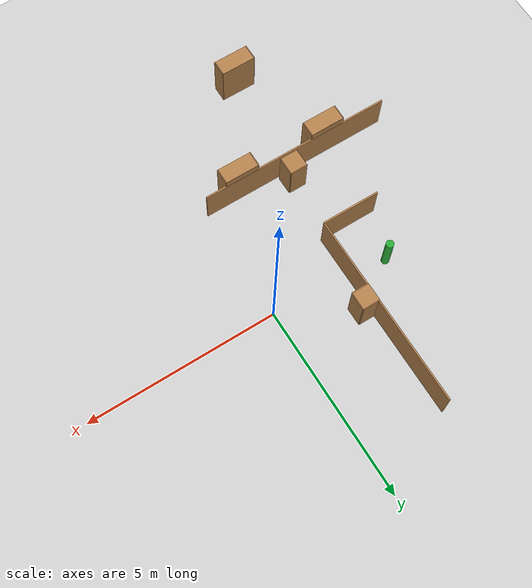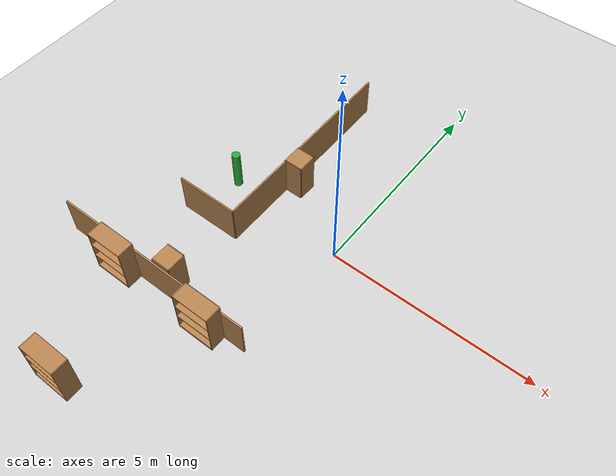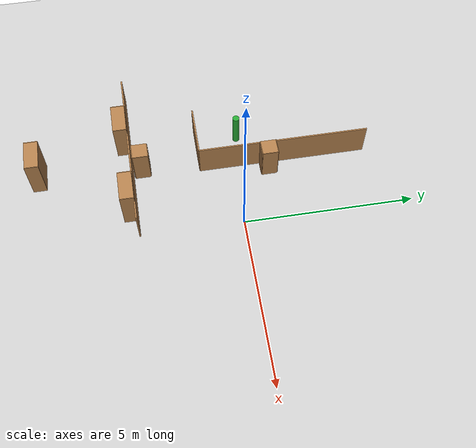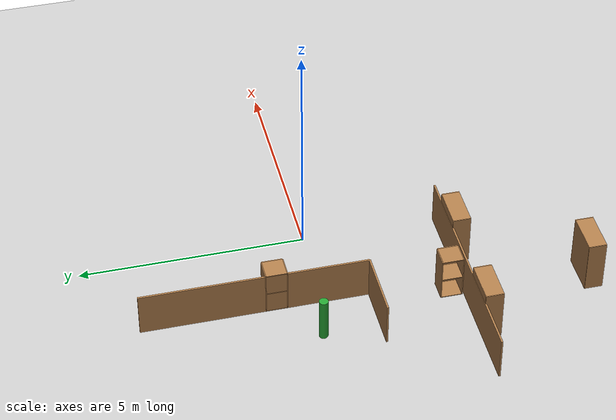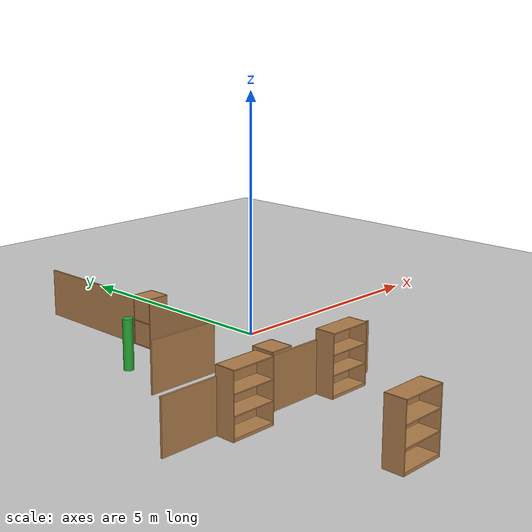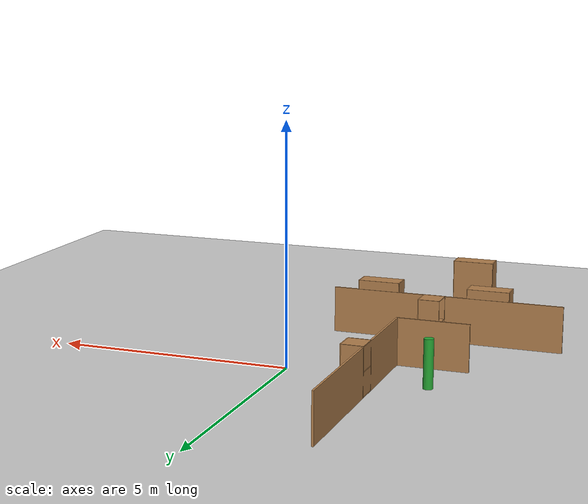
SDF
<sdf version="1.4">
 <world name="default">
  <model name="ground_plane">
   <static>1</static>
   <link name="link">
    <collision name="collision">
     <geometry><plane><normal>0 0 1</normal><size>50 50</size></plane></geometry>
     <surface><friction><ode><mu>100</mu><mu2>50</mu2></ode></friction></surface>
    </collision>
    <visual name="visual">
     <cast_shadows>0</cast_shadows>
     <geometry><plane><normal>0 0 1</normal><size>100 100</size></plane></geometry>
     <material>
      <script><uri>file://media/materials/scripts/gazebo.material</uri><name>Gazebo/Grey</name></script>
     </material>
    </visual>
    <velocity_decay><linear>0</linear><angular>0</angular></velocity_decay>
   </link>
  </model>
  <model name="target_cylinder_D">
   <pose>-3 0.25 0.5 0 -0 0</pose>
   <link name="link">
    <inertial>
     <mass>1</mass>
     <inertia><ixx>1</ixx><ixy>0</ixy><ixz>0</ixz><iyy>1</iyy><iyz>0</iyz><izz>1</izz></inertia>
    </inertial>
    <collision name="collision">
     <geometry><cylinder><radius>0.1</radius><length>1</length></cylinder></geometry>
    </collision>
    <visual name="visual">
     <geometry><cylinder><radius>0.1</radius><length>1</length></cylinder></geometry>
     <material>
      <script><uri>file://media/materials/scripts/gazebo.material</uri><name>Gazebo/Green</name></script>
     </material>
    </visual>
    <velocity_decay><linear>0</linear><angular>0</angular></velocity_decay>
   </link>
   <static>1</static>
  </model>
  <model name="high_wall_1">
   <pose>-2.5 -3 0.5 0 -0 0</pose>
   <link name="link">
    <inertial>
     <mass>1</mass>
     <inertia><ixx>1</ixx><ixy>0</ixy><ixz>0</ixz><iyy>1</iyy><iyz>0</iyz><izz>1</izz></inertia>
    </inertial>
    <collision name="collision"><geometry><box><size>5 0.04 1</size></box></geometry></collision>
    <visual name="visual">
     <geometry><box><size>5 0.04 1</size></box></geometry>
     <material>
      <script><uri>file://media/materials/scripts/gazebo.material</uri><name>Gazebo/Wood</name></script>
     </material>
    </visual>
    <velocity_decay><linear>0</linear><angular>0</angular></velocity_decay>
   </link>
   <static>1</static>
  </model>
  <model name="high_wall_3">
   <pose>-2 1.5 0.5 0 -0 1.571</pose>
   <link name="link">
    <inertial>
     <mass>1</mass>
     <inertia><ixx>1</ixx><ixy>0</ixy><ixz>0</ixz><iyy>1</iyy><iyz>0</iyz><izz>1</izz></inertia>
    </inertial>
    <collision name="collision"><geometry><box><size>5 0.04 1</size></box></geometry></collision>
    <visual name="visual">
     <geometry><box><size>5 0.04 1</size></box></geometry>
     <material>
      <script><uri>file://media/materials/scripts/gazebo.material</uri><name>Gazebo/Wood</name></script>
     </material>
    </visual>
    <velocity_decay><linear>0</linear><angular>0</angular></velocity_decay>
   </link>
   <static>1</static>
  </model>
  <model name="high_wall_5">
   <pose>-2.75 -1 0.5 0 -0 0</pose>
   <link name="link">
    <inertial>
     <mass>1</mass>
     <inertia><ixx>1</ixx><ixy>0</ixy><ixz>0</ixz><iyy>1</iyy><iyz>0</iyz><izz>1</izz></inertia>
    </inertial>
    <collision name="collision"><geometry><box><size>1.5 0.04 1</size></box></geometry></collision>
    <visual name="visual">
     <geometry><box><size>1.5 0.04 1</size></box></geometry>
     <material>
      <script><uri>file://media/materials/scripts/gazebo.material</uri><name>Gazebo/Wood</name></script>
     </material>
    </visual>
    <velocity_decay><linear>0</linear><angular>0</angular></velocity_decay>
   </link>
   <static>1</static>
  </model>
  <model name="bookshelf">
   <static>1</static>
   <link name="link">
    <inertial><mass>1</mass></inertial>
    <collision name="back">
     <pose>0 0.005 0.6 0 -0 0</pose>
     <geometry><box><size>0.9 0.01 1.2</size></box></geometry>
    </collision>
    <visual name="visual1">
     <pose>0 0.005 0.6 0 -0 0</pose>
     <geometry><box><size>0.9 0.01 1.2</size></box></geometry>
     <material>
      <script><uri>file://media/materials/scripts/gazebo.material</uri><name>Gazebo/Wood</name></script>
     </material>
    </visual>
    <collision name="left_side">
     <pose>0.45 -0.195 0.6 0 -0 0</pose>
     <geometry><box><size>0.02 0.4 1.2</size></box></geometry>
    </collision>
    <visual name="visual2">
     <pose>0.45 -0.195 0.6 0 -0 0</pose>
     <geometry><box><size>0.02 0.4 1.2</size></box></geometry>
     <material>
      <script><uri>file://media/materials/scripts/gazebo.material</uri><name>Gazebo/Wood</name></script>
     </material>
    </visual>
    <collision name="right_side">
     <pose>-0.45 -0.195 0.6 0 -0 0</pose>
     <geometry><box><size>0.02 0.4 1.2</size></box></geometry>
    </collision>
    <visual name="visual3">
     <pose>-0.45 -0.195 0.6 0 -0 0</pose>
     <geometry><box><size>0.02 0.4 1.2</size></box></geometry>
     <material>
      <script><uri>file://media/materials/scripts/gazebo.material</uri><name>Gazebo/Wood</name></script>
     </material>
    </visual>
    <collision name="bottom">
     <pose>0 -0.195 0.03 0 -0 0</pose>
     <geometry><box><size>0.88 0.4 0.06</size></box></geometry>
    </collision>
    <visual name="visual4">
     <pose>0 -0.195 0.03 0 -0 0</pose>
     <geometry><box><size>0.88 0.4 0.06</size></box></geometry>
     <material>
      <script><uri>file://media/materials/scripts/gazebo.material</uri><name>Gazebo/Wood</name></script>
     </material>
    </visual>
    <collision name="top">
     <pose>0 -0.195 1.19 0 -0 0</pose>
     <geometry><box><size>0.88 0.4 0.02</size></box></geometry>
    </collision>
    <visual name="visual5">
     <pose>0 -0.195 1.19 0 -0 0</pose>
     <geometry><box><size>0.88 0.4 0.02</size></box></geometry>
     <material>
      <script><uri>file://media/materials/scripts/gazebo.material</uri><name>Gazebo/Wood</name></script>
     </material>
    </visual>
    <collision name="low_shelf">
     <pose>0 -0.195 0.43 0 -0 0</pose>
     <geometry><box><size>0.88 0.4 0.02</size></box></geometry>
    </collision>
    <visual name="visual6">
     <pose>0 -0.195 0.43 0 -0 0</pose>
     <geometry><box><size>0.88 0.4 0.02</size></box></geometry>
     <material>
      <script><uri>file://media/materials/scripts/gazebo.material</uri><name>Gazebo/Wood</name></script>
     </material>
    </visual>
    <collision name="high_shelf">
     <pose>0 -0.195 0.8 0 -0 0</pose>
     <geometry><box><size>0.88 0.4 0.02</size></box></geometry>
    </collision>
    <visual name="visual7">
     <pose>0 -0.195 0.8 0 -0 0</pose>
     <geometry><box><size>0.88 0.4 0.02</size></box></geometry>
     <material>
      <script><uri>file://media/materials/scripts/gazebo.material</uri><name>Gazebo/Wood</name></script>
     </material>
    </visual>
    <velocity_decay><linear>0</linear><angular>0</angular></velocity_decay>
   </link>
   <pose>-3.40176 -3 0 0 -0 0</pose>
  </model>
  <model name="bookshelf_0">
   <static>1</static>
   <link name="link">
    <inertial><mass>1</mass></inertial>
    <collision name="back">
     <pose>0 0.005 0.6 0 -0 0</pose>
     <geometry><box><size>0.9 0.01 1.2</size></box></geometry>
    </collision>
    <visual name="visual1">
     <pose>0 0.005 0.6 0 -0 0</pose>
     <geometry><box><size>0.9 0.01 1.2</size></box></geometry>
     <material>
      <script><uri>file://media/materials/scripts/gazebo.material</uri><name>Gazebo/Wood</name></script>
     </material>
    </visual>
    <collision name="left_side">
     <pose>0.45 -0.195 0.6 0 -0 0</pose>
     <geometry><box><size>0.02 0.4 1.2</size></box></geometry>
    </collision>
    <visual name="visual2">
     <pose>0.45 -0.195 0.6 0 -0 0</pose>
     <geometry><box><size>0.02 0.4 1.2</size></box></geometry>
     <material>
      <script><uri>file://media/materials/scripts/gazebo.material</uri><name>Gazebo/Wood</name></script>
     </material>
    </visual>
    <collision name="right_side">
     <pose>-0.45 -0.195 0.6 0 -0 0</pose>
     <geometry><box><size>0.02 0.4 1.2</size></box></geometry>
    </collision>
    <visual name="visual3">
     <pose>-0.45 -0.195 0.6 0 -0 0</pose>
     <geometry><box><size>0.02 0.4 1.2</size></box></geometry>
     <material>
      <script><uri>file://media/materials/scripts/gazebo.material</uri><name>Gazebo/Wood</name></script>
     </material>
    </visual>
    <collision name="bottom">
     <pose>0 -0.195 0.03 0 -0 0</pose>
     <geometry><box><size>0.88 0.4 0.06</size></box></geometry>
    </collision>
    <visual name="visual4">
     <pose>0 -0.195 0.03 0 -0 0</pose>
     <geometry><box><size>0.88 0.4 0.06</size></box></geometry>
     <material>
      <script><uri>file://media/materials/scripts/gazebo.material</uri><name>Gazebo/Wood</name></script>
     </material>
    </visual>
    <collision name="top">
     <pose>0 -0.195 1.19 0 -0 0</pose>
     <geometry><box><size>0.88 0.4 0.02</size></box></geometry>
    </collision>
    <visual name="visual5">
     <pose>0 -0.195 1.19 0 -0 0</pose>
     <geometry><box><size>0.88 0.4 0.02</size></box></geometry>
     <material>
      <script><uri>file://media/materials/scripts/gazebo.material</uri><name>Gazebo/Wood</name></script>
     </material>
    </visual>
    <collision name="low_shelf">
     <pose>0 -0.195 0.43 0 -0 0</pose>
     <geometry><box><size>0.88 0.4 0.02</size></box></geometry>
    </collision>
    <visual name="visual6">
     <pose>0 -0.195 0.43 0 -0 0</pose>
     <geometry><box><size>0.88 0.4 0.02</size></box></geometry>
     <material>
      <script><uri>file://media/materials/scripts/gazebo.material</uri><name>Gazebo/Wood</name></script>
     </material>
    </visual>
    <collision name="high_shelf">
     <pose>0 -0.195 0.8 0 -0 0</pose>
     <geometry><box><size>0.88 0.4 0.02</size></box></geometry>
    </collision>
    <visual name="visual7">
     <pose>0 -0.195 0.8 0 -0 0</pose>
     <geometry><box><size>0.88 0.4 0.02</size></box></geometry>
     <material>
      <script><uri>file://media/materials/scripts/gazebo.material</uri><name>Gazebo/Wood</name></script>
     </material>
    </visual>
    <velocity_decay><linear>0</linear><angular>0</angular></velocity_decay>
   </link>
   <pose>-1 -3 0 0 -0 0</pose>
  </model>
  <model name="cabinet_0">
   <static>1</static>
   <link name="cabinet_bottom_plate">
    <inertial>
     <pose>0 0 -1 0 -0 0</pose>
     <inertia><ixx>2.05</ixx><ixy>0</ixy><ixz>0</ixz><iyy>2.05</iyy><iyz>0</iyz><izz>2.05</izz></inertia>
     <mass>25</mass>
    </inertial>
    <collision name="cabinet_bottom_plate_geom">
     <pose>0 0 0.01 0 -0 0</pose>
     <geometry><box><size>0.45 0.45 0.02</size></box></geometry>
    </collision>
    <visual name="cabinet_bottom_plate_geom_visual">
     <pose>0 0 0.01 0 -0 0</pose>
     <geometry><box><size>0.45 0.45 0.02</size></box></geometry>
     <material>
      <script><uri>file://media/materials/scripts/gazebo.material</uri><name>Gazebo/Wood</name></script>
     </material>
    </visual>
    <collision name="cabinet_bottom_plate_geom_cabinet_back_plate">
     <pose>0.235 0 0.51 0 -0 0</pose>
     <geometry><box><size>0.02 0.45 1.02</size></box></geometry>
    </collision>
    <visual name="cabinet_bottom_plate_geom_cabinet_back_plate_visual">
     <pose>0.235 0 0.51 0 -0 0</pose>
     <geometry><box><size>0.02 0.45 1.02</size></box></geometry>
     <material>
      <script><uri>file://media/materials/scripts/gazebo.material</uri><name>Gazebo/Wood</name></script>
     </material>
    </visual>
    <collision name="cabinet_bottom_plate_geom_cabinet_left_plate">
     <pose>0 0.235 0.51 0 -0 0</pose>
     <geometry><box><size>0.45 0.02 1.02</size></box></geometry>
    </collision>
    <visual name="cabinet_bottom_plate_geom_cabinet_left_plate_visual">
     <pose>0 0.235 0.51 0 -0 0</pose>
     <geometry><box><size>0.45 0.02 1.02</size></box></geometry>
     <material>
      <script><uri>file://media/materials/scripts/gazebo.material</uri><name>Gazebo/Wood</name></script>
     </material>
    </visual>
    <collision name="cabinet_bottom_plate_geom_cabinet_middle_plate">
     <pose>0 0 0.51 0 -0 0</pose>
     <geometry><box><size>0.45 0.45 0.02</size></box></geometry>
    </collision>
    <visual name="cabinet_bottom_plate_geom_cabinet_middle_plate_visual">
     <pose>0 0 0.51 0 -0 0</pose>
     <geometry><box><size>0.45 0.45 0.02</size></box></geometry>
     <material>
      <script><uri>file://media/materials/scripts/gazebo.material</uri><name>Gazebo/Wood</name></script>
     </material>
    </visual>
    <collision name="cabinet_bottom_plate_geom_cabinet_right_plate">
     <pose>0 -0.235 0.51 0 -0 0</pose>
     <geometry><box><size>0.45 0.02 1.02</size></box></geometry>
    </collision>
    <visual name="cabinet_bottom_plate_geom_cabinet_right_plate_visual">
     <pose>0 -0.235 0.51 0 -0 0</pose>
     <geometry><box><size>0.45 0.02 1.02</size></box></geometry>
     <material>
      <script><uri>file://media/materials/scripts/gazebo.material</uri><name>Gazebo/Wood</name></script>
     </material>
    </visual>
    <collision name="cabinet_bottom_plate_geom_cabinet_top_plate">
     <pose>0 0 1.01 0 -0 0</pose>
     <geometry><box><size>0.45 0.45 0.02</size></box></geometry>
    </collision>
    <visual name="cabinet_bottom_plate_geom_cabinet_top_plate_visual">
     <pose>0 0 1.01 0 -0 0</pose>
     <geometry><box><size>0.45 0.45 0.02</size></box></geometry>
     <material>
      <script><uri>file://media/materials/scripts/gazebo.material</uri><name>Gazebo/Wood</name></script>
     </material>
    </visual>
    <velocity_decay><linear>0</linear><angular>0</angular></velocity_decay>
   </link>
   <pose>-1.79599 1.03535 0 0 -0 0</pose>
  </model>
  <model name="cabinet_2">
   <static>1</static>
   <link name="cabinet_bottom_plate">
    <inertial>
     <pose>0 0 -1 0 -0 0</pose>
     <inertia><ixx>2.05</ixx><ixy>0</ixy><ixz>0</ixz><iyy>2.05</iyy><iyz>0</iyz><izz>2.05</izz></inertia>
     <mass>25</mass>
    </inertial>
    <collision name="cabinet_bottom_plate_geom">
     <pose>0 0 0.01 0 -0 0</pose>
     <geometry><box><size>0.45 0.45 0.02</size></box></geometry>
    </collision>
    <visual name="cabinet_bottom_plate_geom_visual">
     <pose>0 0 0.01 0 -0 0</pose>
     <geometry><box><size>0.45 0.45 0.02</size></box></geometry>
     <material>
      <script><uri>file://media/materials/scripts/gazebo.material</uri><name>Gazebo/Wood</name></script>
     </material>
    </visual>
    <collision name="cabinet_bottom_plate_geom_cabinet_back_plate">
     <pose>0.235 0 0.51 0 -0 0</pose>
     <geometry><box><size>0.02 0.45 1.02</size></box></geometry>
    </collision>
    <visual name="cabinet_bottom_plate_geom_cabinet_back_plate_visual">
     <pose>0.235 0 0.51 0 -0 0</pose>
     <geometry><box><size>0.02 0.45 1.02</size></box></geometry>
     <material>
      <script><uri>file://media/materials/scripts/gazebo.material</uri><name>Gazebo/Wood</name></script>
     </material>
    </visual>
    <collision name="cabinet_bottom_plate_geom_cabinet_left_plate">
     <pose>0 0.235 0.51 0 -0 0</pose>
     <geometry><box><size>0.45 0.02 1.02</size></box></geometry>
    </collision>
    <visual name="cabinet_bottom_plate_geom_cabinet_left_plate_visual">
     <pose>0 0.235 0.51 0 -0 0</pose>
     <geometry><box><size>0.45 0.02 1.02</size></box></geometry>
     <material>
      <script><uri>file://media/materials/scripts/gazebo.material</uri><name>Gazebo/Wood</name></script>
     </material>
    </visual>
    <collision name="cabinet_bottom_plate_geom_cabinet_middle_plate">
     <pose>0 0 0.51 0 -0 0</pose>
     <geometry><box><size>0.45 0.45 0.02</size></box></geometry>
    </collision>
    <visual name="cabinet_bottom_plate_geom_cabinet_middle_plate_visual">
     <pose>0 0 0.51 0 -0 0</pose>
     <geometry><box><size>0.45 0.45 0.02</size></box></geometry>
     <material>
      <script><uri>file://media/materials/scripts/gazebo.material</uri><name>Gazebo/Wood</name></script>
     </material>
    </visual>
    <collision name="cabinet_bottom_plate_geom_cabinet_right_plate">
     <pose>0 -0.235 0.51 0 -0 0</pose>
     <geometry><box><size>0.45 0.02 1.02</size></box></geometry>
    </collision>
    <visual name="cabinet_bottom_plate_geom_cabinet_right_plate_visual">
     <pose>0 -0.235 0.51 0 -0 0</pose>
     <geometry><box><size>0.45 0.02 1.02</size></box></geometry>
     <material>
      <script><uri>file://media/materials/scripts/gazebo.material</uri><name>Gazebo/Wood</name></script>
     </material>
    </visual>
    <collision name="cabinet_bottom_plate_geom_cabinet_top_plate">
     <pose>0 0 1.01 0 -0 0</pose>
     <geometry><box><size>0.45 0.45 0.02</size></box></geometry>
    </collision>
    <visual name="cabinet_bottom_plate_geom_cabinet_top_plate_visual">
     <pose>0 0 1.01 0 -0 0</pose>
     <geometry><box><size>0.45 0.45 0.02</size></box></geometry>
     <material>
      <script><uri>file://media/materials/scripts/gazebo.material</uri><name>Gazebo/Wood</name></script>
     </material>
    </visual>
    <velocity_decay><linear>0</linear><angular>0</angular></velocity_decay>
   </link>
   <pose>-2.2602 -2.70722 0 0 -0 0</pose>
  </model>
  <model name="bookshelf_5">
   <static>1</static>
   <link name="link">
    <inertial><mass>1</mass></inertial>
    <collision name="back">
     <pose>0 0.005 0.6 0 -0 0</pose>
     <geometry><box><size>0.9 0.01 1.2</size></box></geometry>
    </collision>
    <visual name="visual1">
     <pose>0 0.005 0.6 0 -0 0</pose>
     <geometry><box><size>0.9 0.01 1.2</size></box></geometry>
     <material>
      <script><uri>file://media/materials/scripts/gazebo.material</uri><name>Gazebo/Wood</name></script>
     </material>
    </visual>
    <collision name="left_side">
     <pose>0.45 -0.195 0.6 0 -0 0</pose>
     <geometry><box><size>0.02 0.4 1.2</size></box></geometry>
    </collision>
    <visual name="visual2">
     <pose>0.45 -0.195 0.6 0 -0 0</pose>
     <geometry><box><size>0.02 0.4 1.2</size></box></geometry>
     <material>
      <script><uri>file://media/materials/scripts/gazebo.material</uri><name>Gazebo/Wood</name></script>
     </material>
    </visual>
    <collision name="right_side">
     <pose>-0.45 -0.195 0.6 0 -0 0</pose>
     <geometry><box><size>0.02 0.4 1.2</size></box></geometry>
    </collision>
    <visual name="visual3">
     <pose>-0.45 -0.195 0.6 0 -0 0</pose>
     <geometry><box><size>0.02 0.4 1.2</size></box></geometry>
     <material>
      <script><uri>file://media/materials/scripts/gazebo.material</uri><name>Gazebo/Wood</name></script>
     </material>
    </visual>
    <collision name="bottom">
     <pose>0 -0.195 0.03 0 -0 0</pose>
     <geometry><box><size>0.88 0.4 0.06</size></box></geometry>
    </collision>
    <visual name="visual4">
     <pose>0 -0.195 0.03 0 -0 0</pose>
     <geometry><box><size>0.88 0.4 0.06</size></box></geometry>
     <material>
      <script><uri>file://media/materials/scripts/gazebo.material</uri><name>Gazebo/Wood</name></script>
     </material>
    </visual>
    <collision name="top">
     <pose>0 -0.195 1.19 0 -0 0</pose>
     <geometry><box><size>0.88 0.4 0.02</size></box></geometry>
    </collision>
    <visual name="visual5">
     <pose>0 -0.195 1.19 0 -0 0</pose>
     <geometry><box><size>0.88 0.4 0.02</size></box></geometry>
     <material>
      <script><uri>file://media/materials/scripts/gazebo.material</uri><name>Gazebo/Wood</name></script>
     </material>
    </visual>
    <collision name="low_shelf">
     <pose>0 -0.195 0.43 0 -0 0</pose>
     <geometry><box><size>0.88 0.4 0.02</size></box></geometry>
    </collision>
    <visual name="visual6">
     <pose>0 -0.195 0.43 0 -0 0</pose>
     <geometry><box><size>0.88 0.4 0.02</size></box></geometry>
     <material>
      <script><uri>file://media/materials/scripts/gazebo.material</uri><name>Gazebo/Wood</name></script>
     </material>
    </visual>
    <collision name="high_shelf">
     <pose>0 -0.195 0.8 0 -0 0</pose>
     <geometry><box><size>0.88 0.4 0.02</size></box></geometry>
    </collision>
    <visual name="visual7">
     <pose>0 -0.195 0.8 0 -0 0</pose>
     <geometry><box><size>0.88 0.4 0.02</size></box></geometry>
     <material>
      <script><uri>file://media/materials/scripts/gazebo.material</uri><name>Gazebo/Wood</name></script>
     </material>
    </visual>
    <velocity_decay><linear>0</linear><angular>0</angular></velocity_decay>
   </link>
   <pose>-2.47848 -5.56981 0 0 -0 0</pose>
  </model>
 </world>
</sdf>
